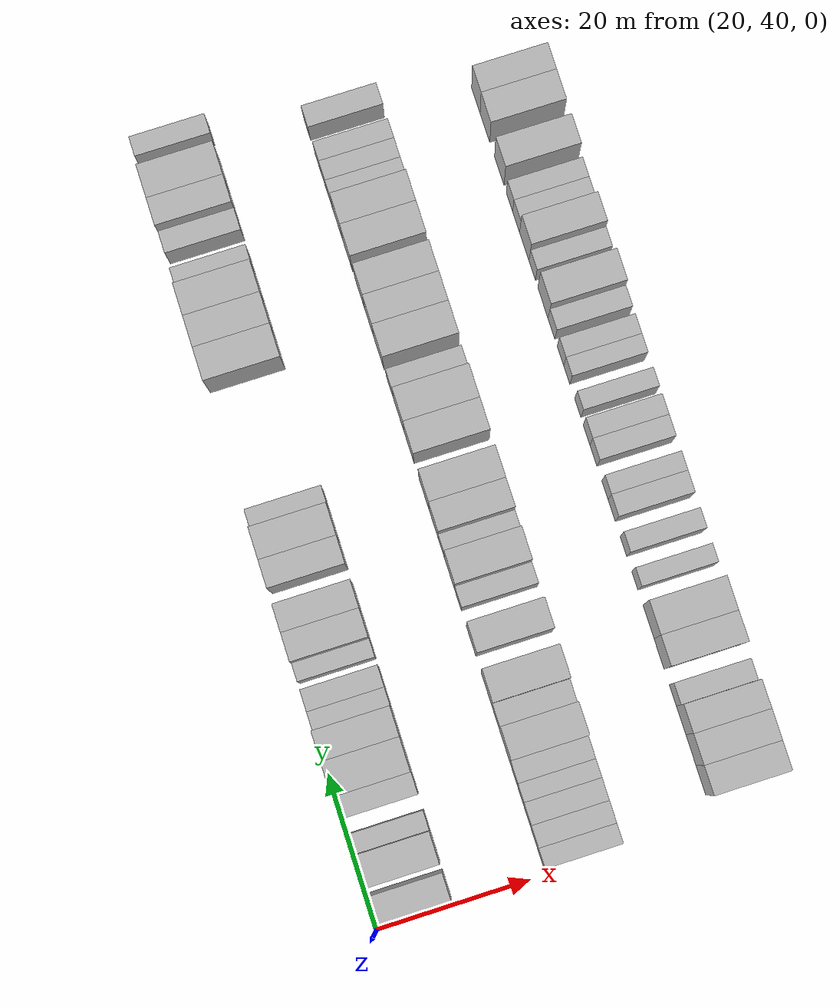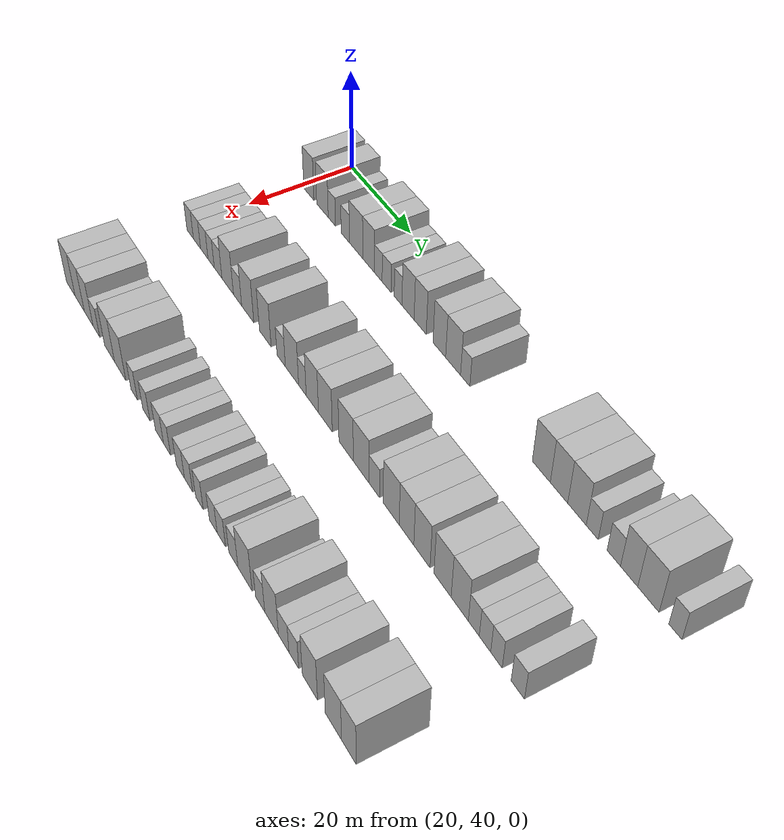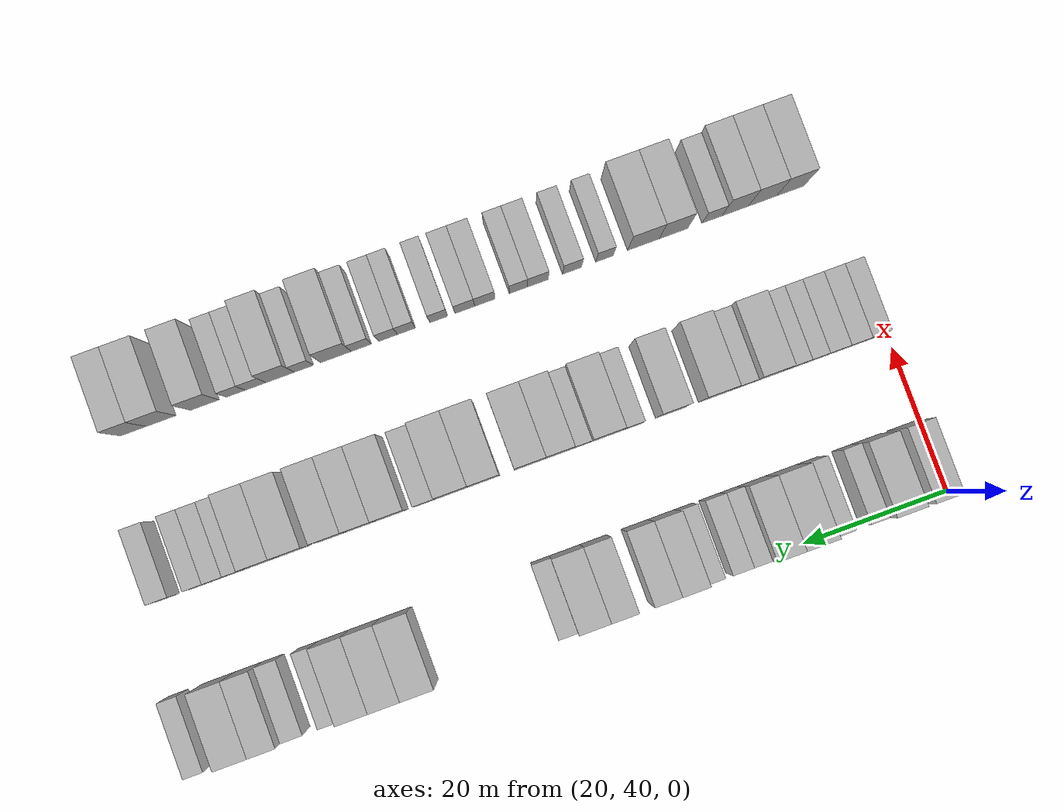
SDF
<sdf version="1.6">
 <world name="default">
  <model name="building_58">
   <static>1</static>
   <pose>25.0000 42.7205 0 0.000000 0.000000 0.000000</pose>
   <link name="link">
    <pose>0 0 4.50 0 0 0</pose>
    <collision name="collision"><geometry><box><size>10.0000 3.7270 9.0000</size></box></geometry></collision>
    <visual name="visual">
     <cast_shadows>0</cast_shadows>
     <geometry><box><size>10.0000 3.7270 9.0000</size></box></geometry>
     <material>
      <script>
       <uri>model://HANNAS_wall/materials/scripts</uri>
       <uri>model://HANNAS_wall/materials/textures</uri>
       <name>vrc/HANNAS_wall</name>
      </script>
     </material>
    </visual>
   </link>
  </model>
  <model name="building_59">
   <static>1</static>
   <pose>25.0000 47.6610 0 0.000000 0.000000 0.000000</pose>
   <link name="link">
    <pose>0 0 4.50 0 0 0</pose>
    <collision name="collision"><geometry><box><size>10.0000 4.1540 9.0000</size></box></geometry></collision>
    <visual name="visual">
     <cast_shadows>0</cast_shadows>
     <geometry><box><size>10.0000 4.1540 9.0000</size></box></geometry>
     <material>
      <script>
       <uri>model://HANNAS_wall/materials/scripts</uri>
       <uri>model://HANNAS_wall/materials/textures</uri>
       <name>vrc/HANNAS_wall</name>
      </script>
     </material>
    </visual>
   </link>
  </model>
  <model name="building_60">
   <static>1</static>
   <pose>25.0000 51.0080 0 0.000000 0.000000 0.000000</pose>
   <link name="link">
    <pose>0 0 3.00 0 0 0</pose>
    <collision name="collision"><geometry><box><size>10.0000 2.5399 6.0000</size></box></geometry></collision>
    <visual name="visual">
     <cast_shadows>0</cast_shadows>
     <geometry><box><size>10.0000 2.5399 6.0000</size></box></geometry>
     <material>
      <script>
       <uri>model://HANNAS_wall/materials/scripts</uri>
       <uri>model://HANNAS_wall/materials/textures</uri>
       <name>vrc/HANNAS_wall</name>
      </script>
     </material>
    </visual>
   </link>
  </model>
  <model name="building_61">
   <static>1</static>
   <pose>25.0000 55.7048 0 0.000000 0.000000 0.000000</pose>
   <link name="link">
    <pose>0 0 3.00 0 0 0</pose>
    <collision name="collision"><geometry><box><size>10.0000 2.8538 6.0000</size></box></geometry></collision>
    <visual name="visual">
     <cast_shadows>0</cast_shadows>
     <geometry><box><size>10.0000 2.8538 6.0000</size></box></geometry>
     <material>
      <script>
       <uri>model://HANNAS_wall/materials/scripts</uri>
       <uri>model://HANNAS_wall/materials/textures</uri>
       <name>vrc/HANNAS_wall</name>
      </script>
     </material>
    </visual>
   </link>
  </model>
  <model name="building_62">
   <static>1</static>
   <pose>25.0000 59.3693 0 0.000000 0.000000 0.000000</pose>
   <link name="link">
    <pose>0 0 4.50 0 0 0</pose>
    <collision name="collision"><geometry><box><size>10.0000 4.4754 9.0000</size></box></geometry></collision>
    <visual name="visual">
     <cast_shadows>0</cast_shadows>
     <geometry><box><size>10.0000 4.4754 9.0000</size></box></geometry>
     <material>
      <script>
       <uri>model://HANNAS_wall/materials/scripts</uri>
       <uri>model://HANNAS_wall/materials/textures</uri>
       <name>vrc/HANNAS_wall</name>
      </script>
     </material>
    </visual>
   </link>
  </model>
  <model name="building_63">
   <static>1</static>
   <pose>25.0000 63.5598 0 0.000000 0.000000 0.000000</pose>
   <link name="link">
    <pose>0 0 4.50 0 0 0</pose>
    <collision name="collision"><geometry><box><size>10.0000 3.9055 9.0000</size></box></geometry></collision>
    <visual name="visual">
     <cast_shadows>0</cast_shadows>
     <geometry><box><size>10.0000 3.9055 9.0000</size></box></geometry>
     <material>
      <script>
       <uri>model://HANNAS_wall/materials/scripts</uri>
       <uri>model://HANNAS_wall/materials/textures</uri>
       <name>vrc/HANNAS_wall</name>
      </script>
     </material>
    </visual>
   </link>
  </model>
  <model name="building_64">
   <static>1</static>
   <pose>25.0000 66.7357 0 0.000000 0.000000 0.000000</pose>
   <link name="link">
    <pose>0 0 3.00 0 0 0</pose>
    <collision name="collision"><geometry><box><size>10.0000 2.4464 6.0000</size></box></geometry></collision>
    <visual name="visual">
     <cast_shadows>0</cast_shadows>
     <geometry><box><size>10.0000 2.4464 6.0000</size></box></geometry>
     <material>
      <script>
       <uri>model://HANNAS_wall/materials/scripts</uri>
       <uri>model://HANNAS_wall/materials/textures</uri>
       <name>vrc/HANNAS_wall</name>
      </script>
     </material>
    </visual>
   </link>
  </model>
  <model name="building_65">
   <static>1</static>
   <pose>25.0000 69.3851 0 0.000000 0.000000 0.000000</pose>
   <link name="link">
    <pose>0 0 3.00 0 0 0</pose>
    <collision name="collision"><geometry><box><size>10.0000 2.8525 6.0000</size></box></geometry></collision>
    <visual name="visual">
     <cast_shadows>0</cast_shadows>
     <geometry><box><size>10.0000 2.8525 6.0000</size></box></geometry>
     <material>
      <script>
       <uri>model://HANNAS_wall/materials/scripts</uri>
       <uri>model://HANNAS_wall/materials/textures</uri>
       <name>vrc/HANNAS_wall</name>
      </script>
     </material>
    </visual>
   </link>
  </model>
  <model name="building_66">
   <static>1</static>
   <pose>25.0000 73.0138 0 0.000000 0.000000 0.000000</pose>
   <link name="link">
    <pose>0 0 3.00 0 0 0</pose>
    <collision name="collision"><geometry><box><size>10.0000 2.4049 6.0000</size></box></geometry></collision>
    <visual name="visual">
     <cast_shadows>0</cast_shadows>
     <geometry><box><size>10.0000 2.4049 6.0000</size></box></geometry>
     <material>
      <script>
       <uri>model://HANNAS_wall/materials/scripts</uri>
       <uri>model://HANNAS_wall/materials/textures</uri>
       <name>vrc/HANNAS_wall</name>
      </script>
     </material>
    </visual>
   </link>
  </model>
  <model name="building_67">
   <static>1</static>
   <pose>25.0000 76.0908 0 0.000000 0.000000 0.000000</pose>
   <link name="link">
    <pose>0 0 4.50 0 0 0</pose>
    <collision name="collision"><geometry><box><size>10.0000 3.7490 9.0000</size></box></geometry></collision>
    <visual name="visual">
     <cast_shadows>0</cast_shadows>
     <geometry><box><size>10.0000 3.7490 9.0000</size></box></geometry>
     <material>
      <script>
       <uri>model://HANNAS_wall/materials/scripts</uri>
       <uri>model://HANNAS_wall/materials/textures</uri>
       <name>vrc/HANNAS_wall</name>
      </script>
     </material>
    </visual>
   </link>
  </model>
  <model name="building_68">
   <static>1</static>
   <pose>25.0000 79.7961 0 0.000000 0.000000 0.000000</pose>
   <link name="link">
    <pose>0 0 4.50 0 0 0</pose>
    <collision name="collision"><geometry><box><size>10.0000 3.6617 9.0000</size></box></geometry></collision>
    <visual name="visual">
     <cast_shadows>0</cast_shadows>
     <geometry><box><size>10.0000 3.6617 9.0000</size></box></geometry>
     <material>
      <script>
       <uri>model://HANNAS_wall/materials/scripts</uri>
       <uri>model://HANNAS_wall/materials/textures</uri>
       <name>vrc/HANNAS_wall</name>
      </script>
     </material>
    </visual>
   </link>
  </model>
  <model name="building_69">
   <static>1</static>
   <pose>25.0000 85.4641 0 0.000000 0.000000 0.000000</pose>
   <link name="link">
    <pose>0 0 4.50 0 0 0</pose>
    <collision name="collision"><geometry><box><size>10.0000 3.6742 9.0000</size></box></geometry></collision>
    <visual name="visual">
     <cast_shadows>0</cast_shadows>
     <geometry><box><size>10.0000 3.6742 9.0000</size></box></geometry>
     <material>
      <script>
       <uri>model://HANNAS_wall/materials/scripts</uri>
       <uri>model://HANNAS_wall/materials/textures</uri>
       <name>vrc/HANNAS_wall</name>
      </script>
     </material>
    </visual>
   </link>
  </model>
  <model name="building_70">
   <static>1</static>
   <pose>25.0000 89.4235 0 0.000000 0.000000 0.000000</pose>
   <link name="link">
    <pose>0 0 4.50 0 0 0</pose>
    <collision name="collision"><geometry><box><size>10.0000 4.2447 9.0000</size></box></geometry></collision>
    <visual name="visual">
     <cast_shadows>0</cast_shadows>
     <geometry><box><size>10.0000 4.2447 9.0000</size></box></geometry>
     <material>
      <script>
       <uri>model://HANNAS_wall/materials/scripts</uri>
       <uri>model://HANNAS_wall/materials/textures</uri>
       <name>vrc/HANNAS_wall</name>
      </script>
     </material>
    </visual>
   </link>
  </model>
  <model name="building_71">
   <static>1</static>
   <pose>25.0000 92.8496 0 0.000000 0.000000 0.000000</pose>
   <link name="link">
    <pose>0 0 3.00 0 0 0</pose>
    <collision name="collision"><geometry><box><size>10.0000 2.6073 6.0000</size></box></geometry></collision>
    <visual name="visual">
     <cast_shadows>0</cast_shadows>
     <geometry><box><size>10.0000 2.6073 6.0000</size></box></geometry>
     <material>
      <script>
       <uri>model://HANNAS_wall/materials/scripts</uri>
       <uri>model://HANNAS_wall/materials/textures</uri>
       <name>vrc/HANNAS_wall</name>
      </script>
     </material>
    </visual>
   </link>
  </model>
  <model name="building_72">
   <static>1</static>
   <pose>25.0000 112.7935 0 0.000000 0.000000 0.000000</pose>
   <link name="link">
    <pose>0 0 4.50 0 0 0</pose>
    <collision name="collision"><geometry><box><size>10.0000 4.4269 9.0000</size></box></geometry></collision>
    <visual name="visual">
     <cast_shadows>0</cast_shadows>
     <geometry><box><size>10.0000 4.4269 9.0000</size></box></geometry>
     <material>
      <script>
       <uri>model://HANNAS_wall/materials/scripts</uri>
       <uri>model://HANNAS_wall/materials/textures</uri>
       <name>vrc/HANNAS_wall</name>
      </script>
     </material>
    </visual>
   </link>
  </model>
  <model name="building_73">
   <static>1</static>
   <pose>25.0000 117.0970 0 0.000000 0.000000 0.000000</pose>
   <link name="link">
    <pose>0 0 4.50 0 0 0</pose>
    <collision name="collision"><geometry><box><size>10.0000 4.1801 9.0000</size></box></geometry></collision>
    <visual name="visual">
     <cast_shadows>0</cast_shadows>
     <geometry><box><size>10.0000 4.1801 9.0000</size></box></geometry>
     <material>
      <script>
       <uri>model://HANNAS_wall/materials/scripts</uri>
       <uri>model://HANNAS_wall/materials/textures</uri>
       <name>vrc/HANNAS_wall</name>
      </script>
     </material>
    </visual>
   </link>
  </model>
  <model name="building_74">
   <static>1</static>
   <pose>25.0000 121.3496 0 0.000000 0.000000 0.000000</pose>
   <link name="link">
    <pose>0 0 4.50 0 0 0</pose>
    <collision name="collision"><geometry><box><size>10.0000 4.3249 9.0000</size></box></geometry></collision>
    <visual name="visual">
     <cast_shadows>0</cast_shadows>
     <geometry><box><size>10.0000 4.3249 9.0000</size></box></geometry>
     <material>
      <script>
       <uri>model://HANNAS_wall/materials/scripts</uri>
       <uri>model://HANNAS_wall/materials/textures</uri>
       <name>vrc/HANNAS_wall</name>
      </script>
     </material>
    </visual>
   </link>
  </model>
  <model name="building_75">
   <static>1</static>
   <pose>25.0000 124.8688 0 0.000000 0.000000 0.000000</pose>
   <link name="link">
    <pose>0 0 3.00 0 0 0</pose>
    <collision name="collision"><geometry><box><size>10.0000 2.7135 6.0000</size></box></geometry></collision>
    <visual name="visual">
     <cast_shadows>0</cast_shadows>
     <geometry><box><size>10.0000 2.7135 6.0000</size></box></geometry>
     <material>
      <script>
       <uri>model://HANNAS_wall/materials/scripts</uri>
       <uri>model://HANNAS_wall/materials/textures</uri>
       <name>vrc/HANNAS_wall</name>
      </script>
     </material>
    </visual>
   </link>
  </model>
  <model name="building_76">
   <static>1</static>
   <pose>25.0000 129.7061 0 0.000000 0.000000 0.000000</pose>
   <link name="link">
    <pose>0 0 3.00 0 0 0</pose>
    <collision name="collision"><geometry><box><size>10.0000 2.9611 6.0000</size></box></geometry></collision>
    <visual name="visual">
     <cast_shadows>0</cast_shadows>
     <geometry><box><size>10.0000 2.9611 6.0000</size></box></geometry>
     <material>
      <script>
       <uri>model://HANNAS_wall/materials/scripts</uri>
       <uri>model://HANNAS_wall/materials/textures</uri>
       <name>vrc/HANNAS_wall</name>
      </script>
     </material>
    </visual>
   </link>
  </model>
  <model name="building_77">
   <static>1</static>
   <pose>25.0000 133.0386 0 0.000000 0.000000 0.000000</pose>
   <link name="link">
    <pose>0 0 4.50 0 0 0</pose>
    <collision name="collision"><geometry><box><size>10.0000 3.7039 9.0000</size></box></geometry></collision>
    <visual name="visual">
     <cast_shadows>0</cast_shadows>
     <geometry><box><size>10.0000 3.7039 9.0000</size></box></geometry>
     <material>
      <script>
       <uri>model://HANNAS_wall/materials/scripts</uri>
       <uri>model://HANNAS_wall/materials/textures</uri>
       <name>vrc/HANNAS_wall</name>
      </script>
     </material>
    </visual>
   </link>
  </model>
  <model name="building_78">
   <static>1</static>
   <pose>25.0000 137.1383 0 0.000000 0.000000 0.000000</pose>
   <link name="link">
    <pose>0 0 4.50 0 0 0</pose>
    <collision name="collision"><geometry><box><size>10.0000 4.4954 9.0000</size></box></geometry></collision>
    <visual name="visual">
     <cast_shadows>0</cast_shadows>
     <geometry><box><size>10.0000 4.4954 9.0000</size></box></geometry>
     <material>
      <script>
       <uri>model://HANNAS_wall/materials/scripts</uri>
       <uri>model://HANNAS_wall/materials/textures</uri>
       <name>vrc/HANNAS_wall</name>
      </script>
     </material>
    </visual>
   </link>
  </model>
  <model name="building_79">
   <static>1</static>
   <pose>25.0000 142.7138 0 0.000000 0.000000 0.000000</pose>
   <link name="link">
    <pose>0 0 3.00 0 0 0</pose>
    <collision name="collision"><geometry><box><size>10.0000 2.6556 6.0000</size></box></geometry></collision>
    <visual name="visual">
     <cast_shadows>0</cast_shadows>
     <geometry><box><size>10.0000 2.6556 6.0000</size></box></geometry>
     <material>
      <script>
       <uri>model://HANNAS_wall/materials/scripts</uri>
       <uri>model://HANNAS_wall/materials/textures</uri>
       <name>vrc/HANNAS_wall</name>
      </script>
     </material>
    </visual>
   </link>
  </model>
  <model name="building_186">
   <static>1</static>
   <pose>47.0000 42.3346 0 0.000000 0.000000 0.000000</pose>
   <link name="link">
    <pose>0 0 3.00 0 0 0</pose>
    <collision name="collision"><geometry><box><size>10.0000 2.6001 6.0000</size></box></geometry></collision>
    <visual name="visual">
     <cast_shadows>0</cast_shadows>
     <geometry><box><size>10.0000 2.6001 6.0000</size></box></geometry>
     <material>
      <script>
       <uri>model://HANNAS_wall/materials/scripts</uri>
       <uri>model://HANNAS_wall/materials/textures</uri>
       <name>vrc/HANNAS_wall</name>
      </script>
     </material>
    </visual>
   </link>
  </model>
  <model name="building_187">
   <static>1</static>
   <pose>47.0000 45.0636 0 0.000000 0.000000 0.000000</pose>
   <link name="link">
    <pose>0 0 3.00 0 0 0</pose>
    <collision name="collision"><geometry><box><size>10.0000 2.8581 6.0000</size></box></geometry></collision>
    <visual name="visual">
     <cast_shadows>0</cast_shadows>
     <geometry><box><size>10.0000 2.8581 6.0000</size></box></geometry>
     <material>
      <script>
       <uri>model://HANNAS_wall/materials/scripts</uri>
       <uri>model://HANNAS_wall/materials/textures</uri>
       <name>vrc/HANNAS_wall</name>
      </script>
     </material>
    </visual>
   </link>
  </model>
  <model name="building_188">
   <static>1</static>
   <pose>47.0000 47.9444 0 0.000000 0.000000 0.000000</pose>
   <link name="link">
    <pose>0 0 3.00 0 0 0</pose>
    <collision name="collision"><geometry><box><size>10.0000 2.9035 6.0000</size></box></geometry></collision>
    <visual name="visual">
     <cast_shadows>0</cast_shadows>
     <geometry><box><size>10.0000 2.9035 6.0000</size></box></geometry>
     <material>
      <script>
       <uri>model://HANNAS_wall/materials/scripts</uri>
       <uri>model://HANNAS_wall/materials/textures</uri>
       <name>vrc/HANNAS_wall</name>
      </script>
     </material>
    </visual>
   </link>
  </model>
  <model name="building_189">
   <static>1</static>
   <pose>47.0000 50.5984 0 0.000000 0.000000 0.000000</pose>
   <link name="link">
    <pose>0 0 3.00 0 0 0</pose>
    <collision name="collision"><geometry><box><size>10.0000 2.4044 6.0000</size></box></geometry></collision>
    <visual name="visual">
     <cast_shadows>0</cast_shadows>
     <geometry><box><size>10.0000 2.4044 6.0000</size></box></geometry>
     <material>
      <script>
       <uri>model://HANNAS_wall/materials/scripts</uri>
       <uri>model://HANNAS_wall/materials/textures</uri>
       <name>vrc/HANNAS_wall</name>
      </script>
     </material>
    </visual>
   </link>
  </model>
  <model name="building_190">
   <static>1</static>
   <pose>47.0000 53.2652 0 0.000000 0.000000 0.000000</pose>
   <link name="link">
    <pose>0 0 3.00 0 0 0</pose>
    <collision name="collision"><geometry><box><size>10.0000 2.9292 6.0000</size></box></geometry></collision>
    <visual name="visual">
     <cast_shadows>0</cast_shadows>
     <geometry><box><size>10.0000 2.9292 6.0000</size></box></geometry>
     <material>
      <script>
       <uri>model://HANNAS_wall/materials/scripts</uri>
       <uri>model://HANNAS_wall/materials/textures</uri>
       <name>vrc/HANNAS_wall</name>
      </script>
     </material>
    </visual>
   </link>
  </model>
  <model name="building_191">
   <static>1</static>
   <pose>47.0000 56.8713 0 0.000000 0.000000 0.000000</pose>
   <link name="link">
    <pose>0 0 4.50 0 0 0</pose>
    <collision name="collision"><geometry><box><size>10.0000 4.2830 9.0000</size></box></geometry></collision>
    <visual name="visual">
     <cast_shadows>0</cast_shadows>
     <geometry><box><size>10.0000 4.2830 9.0000</size></box></geometry>
     <material>
      <script>
       <uri>model://HANNAS_wall/materials/scripts</uri>
       <uri>model://HANNAS_wall/materials/textures</uri>
       <name>vrc/HANNAS_wall</name>
      </script>
     </material>
    </visual>
   </link>
  </model>
  <model name="building_192">
   <static>1</static>
   <pose>47.0000 60.5067 0 0.000000 0.000000 0.000000</pose>
   <link name="link">
    <pose>0 0 3.00 0 0 0</pose>
    <collision name="collision"><geometry><box><size>10.0000 2.9879 6.0000</size></box></geometry></collision>
    <visual name="visual">
     <cast_shadows>0</cast_shadows>
     <geometry><box><size>10.0000 2.9879 6.0000</size></box></geometry>
     <material>
      <script>
       <uri>model://HANNAS_wall/materials/scripts</uri>
       <uri>model://HANNAS_wall/materials/textures</uri>
       <name>vrc/HANNAS_wall</name>
      </script>
     </material>
    </visual>
   </link>
  </model>
  <model name="building_193">
   <static>1</static>
   <pose>47.0000 64.1686 0 0.000000 0.000000 0.000000</pose>
   <link name="link">
    <pose>0 0 4.50 0 0 0</pose>
    <collision name="collision"><geometry><box><size>10.0000 4.3358 9.0000</size></box></geometry></collision>
    <visual name="visual">
     <cast_shadows>0</cast_shadows>
     <geometry><box><size>10.0000 4.3358 9.0000</size></box></geometry>
     <material>
      <script>
       <uri>model://HANNAS_wall/materials/scripts</uri>
       <uri>model://HANNAS_wall/materials/textures</uri>
       <name>vrc/HANNAS_wall</name>
      </script>
     </material>
    </visual>
   </link>
  </model>
  <model name="building_194">
   <static>1</static>
   <pose>47.0000 70.3367 0 0.000000 0.000000 0.000000</pose>
   <link name="link">
    <pose>0 0 4.50 0 0 0</pose>
    <collision name="collision"><geometry><box><size>10.0000 4.0005 9.0000</size></box></geometry></collision>
    <visual name="visual">
     <cast_shadows>0</cast_shadows>
     <geometry><box><size>10.0000 4.0005 9.0000</size></box></geometry>
     <material>
      <script>
       <uri>model://HANNAS_wall/materials/scripts</uri>
       <uri>model://HANNAS_wall/materials/textures</uri>
       <name>vrc/HANNAS_wall</name>
      </script>
     </material>
    </visual>
   </link>
  </model>
  <model name="building_195">
   <static>1</static>
   <pose>47.0000 75.7270 0 0.000000 0.000000 0.000000</pose>
   <link name="link">
    <pose>0 0 3.00 0 0 0</pose>
    <collision name="collision"><geometry><box><size>10.0000 2.7800 6.0000</size></box></geometry></collision>
    <visual name="visual">
     <cast_shadows>0</cast_shadows>
     <geometry><box><size>10.0000 2.7800 6.0000</size></box></geometry>
     <material>
      <script>
       <uri>model://HANNAS_wall/materials/scripts</uri>
       <uri>model://HANNAS_wall/materials/textures</uri>
       <name>vrc/HANNAS_wall</name>
      </script>
     </material>
    </visual>
   </link>
  </model>
  <model name="building_196">
   <static>1</static>
   <pose>47.0000 79.2919 0 0.000000 0.000000 0.000000</pose>
   <link name="link">
    <pose>0 0 4.50 0 0 0</pose>
    <collision name="collision"><geometry><box><size>10.0000 4.3498 9.0000</size></box></geometry></collision>
    <visual name="visual">
     <cast_shadows>0</cast_shadows>
     <geometry><box><size>10.0000 4.3498 9.0000</size></box></geometry>
     <material>
      <script>
       <uri>model://HANNAS_wall/materials/scripts</uri>
       <uri>model://HANNAS_wall/materials/textures</uri>
       <name>vrc/HANNAS_wall</name>
      </script>
     </material>
    </visual>
   </link>
  </model>
  <model name="building_197">
   <static>1</static>
   <pose>47.0000 82.6825 0 0.000000 0.000000 0.000000</pose>
   <link name="link">
    <pose>0 0 3.00 0 0 0</pose>
    <collision name="collision"><geometry><box><size>10.0000 2.4313 6.0000</size></box></geometry></collision>
    <visual name="visual">
     <cast_shadows>0</cast_shadows>
     <geometry><box><size>10.0000 2.4313 6.0000</size></box></geometry>
     <material>
      <script>
       <uri>model://HANNAS_wall/materials/scripts</uri>
       <uri>model://HANNAS_wall/materials/textures</uri>
       <name>vrc/HANNAS_wall</name>
      </script>
     </material>
    </visual>
   </link>
  </model>
  <model name="building_198">
   <static>1</static>
   <pose>47.0000 85.8250 0 0.000000 0.000000 0.000000</pose>
   <link name="link">
    <pose>0 0 4.50 0 0 0</pose>
    <collision name="collision"><geometry><box><size>10.0000 3.8539 9.0000</size></box></geometry></collision>
    <visual name="visual">
     <cast_shadows>0</cast_shadows>
     <geometry><box><size>10.0000 3.8539 9.0000</size></box></geometry>
     <material>
      <script>
       <uri>model://HANNAS_wall/materials/scripts</uri>
       <uri>model://HANNAS_wall/materials/textures</uri>
       <name>vrc/HANNAS_wall</name>
      </script>
     </material>
    </visual>
   </link>
  </model>
  <model name="building_199">
   <static>1</static>
   <pose>47.0000 89.8722 0 0.000000 0.000000 0.000000</pose>
   <link name="link">
    <pose>0 0 4.50 0 0 0</pose>
    <collision name="collision"><geometry><box><size>10.0000 4.2404 9.0000</size></box></geometry></collision>
    <visual name="visual">
     <cast_shadows>0</cast_shadows>
     <geometry><box><size>10.0000 4.2404 9.0000</size></box></geometry>
     <material>
      <script>
       <uri>model://HANNAS_wall/materials/scripts</uri>
       <uri>model://HANNAS_wall/materials/textures</uri>
       <name>vrc/HANNAS_wall</name>
      </script>
     </material>
    </visual>
   </link>
  </model>
  <model name="building_200">
   <static>1</static>
   <pose>47.0000 96.1165 0 0.000000 0.000000 0.000000</pose>
   <link name="link">
    <pose>0 0 4.50 0 0 0</pose>
    <collision name="collision"><geometry><box><size>10.0000 4.2482 9.0000</size></box></geometry></collision>
    <visual name="visual">
     <cast_shadows>0</cast_shadows>
     <geometry><box><size>10.0000 4.2482 9.0000</size></box></geometry>
     <material>
      <script>
       <uri>model://HANNAS_wall/materials/scripts</uri>
       <uri>model://HANNAS_wall/materials/textures</uri>
       <name>vrc/HANNAS_wall</name>
      </script>
     </material>
    </visual>
   </link>
  </model>
  <model name="building_201">
   <static>1</static>
   <pose>47.0000 100.4688 0 0.000000 0.000000 0.000000</pose>
   <link name="link">
    <pose>0 0 4.50 0 0 0</pose>
    <collision name="collision"><geometry><box><size>10.0000 4.4564 9.0000</size></box></geometry></collision>
    <visual name="visual">
     <cast_shadows>0</cast_shadows>
     <geometry><box><size>10.0000 4.4564 9.0000</size></box></geometry>
     <material>
      <script>
       <uri>model://HANNAS_wall/materials/scripts</uri>
       <uri>model://HANNAS_wall/materials/textures</uri>
       <name>vrc/HANNAS_wall</name>
      </script>
     </material>
    </visual>
   </link>
  </model>
  <model name="building_202">
   <static>1</static>
   <pose>47.0000 104.1846 0 0.000000 0.000000 0.000000</pose>
   <link name="link">
    <pose>0 0 3.00 0 0 0</pose>
    <collision name="collision"><geometry><box><size>10.0000 2.9751 6.0000</size></box></geometry></collision>
    <visual name="visual">
     <cast_shadows>0</cast_shadows>
     <geometry><box><size>10.0000 2.9751 6.0000</size></box></geometry>
     <material>
      <script>
       <uri>model://HANNAS_wall/materials/scripts</uri>
       <uri>model://HANNAS_wall/materials/textures</uri>
       <name>vrc/HANNAS_wall</name>
      </script>
     </material>
    </visual>
   </link>
  </model>
  <model name="building_203">
   <static>1</static>
   <pose>47.0000 108.8493 0 0.000000 0.000000 0.000000</pose>
   <link name="link">
    <pose>0 0 4.50 0 0 0</pose>
    <collision name="collision"><geometry><box><size>10.0000 4.3542 9.0000</size></box></geometry></collision>
    <visual name="visual">
     <cast_shadows>0</cast_shadows>
     <geometry><box><size>10.0000 4.3542 9.0000</size></box></geometry>
     <material>
      <script>
       <uri>model://HANNAS_wall/materials/scripts</uri>
       <uri>model://HANNAS_wall/materials/textures</uri>
       <name>vrc/HANNAS_wall</name>
      </script>
     </material>
    </visual>
   </link>
  </model>
  <model name="building_204">
   <static>1</static>
   <pose>47.0000 112.9683 0 0.000000 0.000000 0.000000</pose>
   <link name="link">
    <pose>0 0 4.50 0 0 0</pose>
    <collision name="collision"><geometry><box><size>10.0000 3.8839 9.0000</size></box></geometry></collision>
    <visual name="visual">
     <cast_shadows>0</cast_shadows>
     <geometry><box><size>10.0000 3.8839 9.0000</size></box></geometry>
     <material>
      <script>
       <uri>model://HANNAS_wall/materials/scripts</uri>
       <uri>model://HANNAS_wall/materials/textures</uri>
       <name>vrc/HANNAS_wall</name>
      </script>
     </material>
    </visual>
   </link>
  </model>
  <model name="building_205">
   <static>1</static>
   <pose>47.0000 116.9924 0 0.000000 0.000000 0.000000</pose>
   <link name="link">
    <pose>0 0 4.50 0 0 0</pose>
    <collision name="collision"><geometry><box><size>10.0000 4.1643 9.0000</size></box></geometry></collision>
    <visual name="visual">
     <cast_shadows>0</cast_shadows>
     <geometry><box><size>10.0000 4.1643 9.0000</size></box></geometry>
     <material>
      <script>
       <uri>model://HANNAS_wall/materials/scripts</uri>
       <uri>model://HANNAS_wall/materials/textures</uri>
       <name>vrc/HANNAS_wall</name>
      </script>
     </material>
    </visual>
   </link>
  </model>
  <model name="building_206">
   <static>1</static>
   <pose>47.0000 122.2090 0 0.000000 0.000000 0.000000</pose>
   <link name="link">
    <pose>0 0 4.50 0 0 0</pose>
    <collision name="collision"><geometry><box><size>10.0000 4.2689 9.0000</size></box></geometry></collision>
    <visual name="visual">
     <cast_shadows>0</cast_shadows>
     <geometry><box><size>10.0000 4.2689 9.0000</size></box></geometry>
     <material>
      <script>
       <uri>model://HANNAS_wall/materials/scripts</uri>
       <uri>model://HANNAS_wall/materials/textures</uri>
       <name>vrc/HANNAS_wall</name>
      </script>
     </material>
    </visual>
   </link>
  </model>
  <model name="building_207">
   <static>1</static>
   <pose>47.0000 126.4212 0 0.000000 0.000000 0.000000</pose>
   <link name="link">
    <pose>0 0 4.50 0 0 0</pose>
    <collision name="collision"><geometry><box><size>10.0000 4.1556 9.0000</size></box></geometry></collision>
    <visual name="visual">
     <cast_shadows>0</cast_shadows>
     <geometry><box><size>10.0000 4.1556 9.0000</size></box></geometry>
     <material>
      <script>
       <uri>model://HANNAS_wall/materials/scripts</uri>
       <uri>model://HANNAS_wall/materials/textures</uri>
       <name>vrc/HANNAS_wall</name>
      </script>
     </material>
    </visual>
   </link>
  </model>
  <model name="building_208">
   <static>1</static>
   <pose>47.0000 129.7878 0 0.000000 0.000000 0.000000</pose>
   <link name="link">
    <pose>0 0 3.00 0 0 0</pose>
    <collision name="collision"><geometry><box><size>10.0000 2.5776 6.0000</size></box></geometry></collision>
    <visual name="visual">
     <cast_shadows>0</cast_shadows>
     <geometry><box><size>10.0000 2.5776 6.0000</size></box></geometry>
     <material>
      <script>
       <uri>model://HANNAS_wall/materials/scripts</uri>
       <uri>model://HANNAS_wall/materials/textures</uri>
       <name>vrc/HANNAS_wall</name>
      </script>
     </material>
    </visual>
   </link>
  </model>
  <model name="building_209">
   <static>1</static>
   <pose>47.0000 132.4002 0 0.000000 0.000000 0.000000</pose>
   <link name="link">
    <pose>0 0 3.00 0 0 0</pose>
    <collision name="collision"><geometry><box><size>10.0000 2.6472 6.0000</size></box></geometry></collision>
    <visual name="visual">
     <cast_shadows>0</cast_shadows>
     <geometry><box><size>10.0000 2.6472 6.0000</size></box></geometry>
     <material>
      <script>
       <uri>model://HANNAS_wall/materials/scripts</uri>
       <uri>model://HANNAS_wall/materials/textures</uri>
       <name>vrc/HANNAS_wall</name>
      </script>
     </material>
    </visual>
   </link>
  </model>
  <model name="building_210">
   <static>1</static>
   <pose>47.0000 135.0290 0 0.000000 0.000000 0.000000</pose>
   <link name="link">
    <pose>0 0 3.00 0 0 0</pose>
    <collision name="collision"><geometry><box><size>10.0000 2.6105 6.0000</size></box></geometry></collision>
    <visual name="visual">
     <cast_shadows>0</cast_shadows>
     <geometry><box><size>10.0000 2.6105 6.0000</size></box></geometry>
     <material>
      <script>
       <uri>model://HANNAS_wall/materials/scripts</uri>
       <uri>model://HANNAS_wall/materials/textures</uri>
       <name>vrc/HANNAS_wall</name>
      </script>
     </material>
    </visual>
   </link>
  </model>
  <model name="building_211">
   <static>1</static>
   <pose>47.0000 139.7994 0 0.000000 0.000000 0.000000</pose>
   <link name="link">
    <pose>0 0 3.00 0 0 0</pose>
    <collision name="collision"><geometry><box><size>10.0000 2.9303 6.0000</size></box></geometry></collision>
    <visual name="visual">
     <cast_shadows>0</cast_shadows>
     <geometry><box><size>10.0000 2.9303 6.0000</size></box></geometry>
     <material>
      <script>
       <uri>model://HANNAS_wall/materials/scripts</uri>
       <uri>model://HANNAS_wall/materials/textures</uri>
       <name>vrc/HANNAS_wall</name>
      </script>
     </material>
    </visual>
   </link>
  </model>
  <model name="building_313">
   <static>1</static>
   <pose>69.0000 45.1753 0 0.000000 0.000000 0.000000</pose>
   <link name="link">
    <pose>0 0 4.50 0 0 0</pose>
    <collision name="collision"><geometry><box><size>10.0000 3.8233 9.0000</size></box></geometry></collision>
    <visual name="visual">
     <cast_shadows>0</cast_shadows>
     <geometry><box><size>10.0000 3.8233 9.0000</size></box></geometry>
     <material>
      <script>
       <uri>model://HANNAS_wall/materials/scripts</uri>
       <uri>model://HANNAS_wall/materials/textures</uri>
       <name>vrc/HANNAS_wall</name>
      </script>
     </material>
    </visual>
   </link>
  </model>
  <model name="building_314">
   <static>1</static>
   <pose>69.0000 49.0927 0 0.000000 0.000000 0.000000</pose>
   <link name="link">
    <pose>0 0 4.50 0 0 0</pose>
    <collision name="collision"><geometry><box><size>10.0000 4.0115 9.0000</size></box></geometry></collision>
    <visual name="visual">
     <cast_shadows>0</cast_shadows>
     <geometry><box><size>10.0000 4.0115 9.0000</size></box></geometry>
     <material>
      <script>
       <uri>model://HANNAS_wall/materials/scripts</uri>
       <uri>model://HANNAS_wall/materials/textures</uri>
       <name>vrc/HANNAS_wall</name>
      </script>
     </material>
    </visual>
   </link>
  </model>
  <model name="building_315">
   <static>1</static>
   <pose>69.0000 52.9551 0 0.000000 0.000000 0.000000</pose>
   <link name="link">
    <pose>0 0 4.50 0 0 0</pose>
    <collision name="collision"><geometry><box><size>10.0000 3.7131 9.0000</size></box></geometry></collision>
    <visual name="visual">
     <cast_shadows>0</cast_shadows>
     <geometry><box><size>10.0000 3.7131 9.0000</size></box></geometry>
     <material>
      <script>
       <uri>model://HANNAS_wall/materials/scripts</uri>
       <uri>model://HANNAS_wall/materials/textures</uri>
       <name>vrc/HANNAS_wall</name>
      </script>
     </material>
    </visual>
   </link>
  </model>
  <model name="building_316">
   <static>1</static>
   <pose>69.0000 56.2099 0 0.000000 0.000000 0.000000</pose>
   <link name="link">
    <pose>0 0 3.00 0 0 0</pose>
    <collision name="collision"><geometry><box><size>10.0000 2.7965 6.0000</size></box></geometry></collision>
    <visual name="visual">
     <cast_shadows>0</cast_shadows>
     <geometry><box><size>10.0000 2.7965 6.0000</size></box></geometry>
     <material>
      <script>
       <uri>model://HANNAS_wall/materials/scripts</uri>
       <uri>model://HANNAS_wall/materials/textures</uri>
       <name>vrc/HANNAS_wall</name>
      </script>
     </material>
    </visual>
   </link>
  </model>
  <model name="building_317">
   <static>1</static>
   <pose>69.0000 61.6062 0 0.000000 0.000000 0.000000</pose>
   <link name="link">
    <pose>0 0 4.50 0 0 0</pose>
    <collision name="collision"><geometry><box><size>10.0000 3.9961 9.0000</size></box></geometry></collision>
    <visual name="visual">
     <cast_shadows>0</cast_shadows>
     <geometry><box><size>10.0000 3.9961 9.0000</size></box></geometry>
     <material>
      <script>
       <uri>model://HANNAS_wall/materials/scripts</uri>
       <uri>model://HANNAS_wall/materials/textures</uri>
       <name>vrc/HANNAS_wall</name>
      </script>
     </material>
    </visual>
   </link>
  </model>
  <model name="building_318">
   <static>1</static>
   <pose>69.0000 65.8318 0 0.000000 0.000000 0.000000</pose>
   <link name="link">
    <pose>0 0 4.50 0 0 0</pose>
    <collision name="collision"><geometry><box><size>10.0000 4.4550 9.0000</size></box></geometry></collision>
    <visual name="visual">
     <cast_shadows>0</cast_shadows>
     <geometry><box><size>10.0000 4.4550 9.0000</size></box></geometry>
     <material>
      <script>
       <uri>model://HANNAS_wall/materials/scripts</uri>
       <uri>model://HANNAS_wall/materials/textures</uri>
       <name>vrc/HANNAS_wall</name>
      </script>
     </material>
    </visual>
   </link>
  </model>
  <model name="building_319">
   <static>1</static>
   <pose>69.0000 71.2851 0 0.000000 0.000000 0.000000</pose>
   <link name="link">
    <pose>0 0 3.00 0 0 0</pose>
    <collision name="collision"><geometry><box><size>10.0000 2.4518 6.0000</size></box></geometry></collision>
    <visual name="visual">
     <cast_shadows>0</cast_shadows>
     <geometry><box><size>10.0000 2.4518 6.0000</size></box></geometry>
     <material>
      <script>
       <uri>model://HANNAS_wall/materials/scripts</uri>
       <uri>model://HANNAS_wall/materials/textures</uri>
       <name>vrc/HANNAS_wall</name>
      </script>
     </material>
    </visual>
   </link>
  </model>
  <model name="building_320">
   <static>1</static>
   <pose>69.0000 75.8413 0 0.000000 0.000000 0.000000</pose>
   <link name="link">
    <pose>0 0 3.00 0 0 0</pose>
    <collision name="collision"><geometry><box><size>10.0000 2.6605 6.0000</size></box></geometry></collision>
    <visual name="visual">
     <cast_shadows>0</cast_shadows>
     <geometry><box><size>10.0000 2.6605 6.0000</size></box></geometry>
     <material>
      <script>
       <uri>model://HANNAS_wall/materials/scripts</uri>
       <uri>model://HANNAS_wall/materials/textures</uri>
       <name>vrc/HANNAS_wall</name>
      </script>
     </material>
    </visual>
   </link>
  </model>
  <model name="building_321">
   <static>1</static>
   <pose>69.0000 80.6207 0 0.000000 0.000000 0.000000</pose>
   <link name="link">
    <pose>0 0 3.00 0 0 0</pose>
    <collision name="collision"><geometry><box><size>10.0000 2.8983 6.0000</size></box></geometry></collision>
    <visual name="visual">
     <cast_shadows>0</cast_shadows>
     <geometry><box><size>10.0000 2.8983 6.0000</size></box></geometry>
     <material>
      <script>
       <uri>model://HANNAS_wall/materials/scripts</uri>
       <uri>model://HANNAS_wall/materials/textures</uri>
       <name>vrc/HANNAS_wall</name>
      </script>
     </material>
    </visual>
   </link>
  </model>
  <model name="building_322">
   <static>1</static>
   <pose>69.0000 83.3358 0 0.000000 0.000000 0.000000</pose>
   <link name="link">
    <pose>0 0 3.00 0 0 0</pose>
    <collision name="collision"><geometry><box><size>10.0000 2.5320 6.0000</size></box></geometry></collision>
    <visual name="visual">
     <cast_shadows>0</cast_shadows>
     <geometry><box><size>10.0000 2.5320 6.0000</size></box></geometry>
     <material>
      <script>
       <uri>model://HANNAS_wall/materials/scripts</uri>
       <uri>model://HANNAS_wall/materials/textures</uri>
       <name>vrc/HANNAS_wall</name>
      </script>
     </material>
    </visual>
   </link>
  </model>
  <model name="building_323">
   <static>1</static>
   <pose>69.0000 88.0215 0 0.000000 0.000000 0.000000</pose>
   <link name="link">
    <pose>0 0 3.00 0 0 0</pose>
    <collision name="collision"><geometry><box><size>10.0000 2.8394 6.0000</size></box></geometry></collision>
    <visual name="visual">
     <cast_shadows>0</cast_shadows>
     <geometry><box><size>10.0000 2.8394 6.0000</size></box></geometry>
     <material>
      <script>
       <uri>model://HANNAS_wall/materials/scripts</uri>
       <uri>model://HANNAS_wall/materials/textures</uri>
       <name>vrc/HANNAS_wall</name>
      </script>
     </material>
    </visual>
   </link>
  </model>
  <model name="building_324">
   <static>1</static>
   <pose>69.0000 90.8163 0 0.000000 0.000000 0.000000</pose>
   <link name="link">
    <pose>0 0 3.00 0 0 0</pose>
    <collision name="collision"><geometry><box><size>10.0000 2.7501 6.0000</size></box></geometry></collision>
    <visual name="visual">
     <cast_shadows>0</cast_shadows>
     <geometry><box><size>10.0000 2.7501 6.0000</size></box></geometry>
     <material>
      <script>
       <uri>model://HANNAS_wall/materials/scripts</uri>
       <uri>model://HANNAS_wall/materials/textures</uri>
       <name>vrc/HANNAS_wall</name>
      </script>
     </material>
    </visual>
   </link>
  </model>
  <model name="building_325">
   <static>1</static>
   <pose>69.0000 94.4416 0 0.000000 0.000000 0.000000</pose>
   <link name="link">
    <pose>0 0 3.00 0 0 0</pose>
    <collision name="collision"><geometry><box><size>10.0000 2.5005 6.0000</size></box></geometry></collision>
    <visual name="visual">
     <cast_shadows>0</cast_shadows>
     <geometry><box><size>10.0000 2.5005 6.0000</size></box></geometry>
     <material>
      <script>
       <uri>model://HANNAS_wall/materials/scripts</uri>
       <uri>model://HANNAS_wall/materials/textures</uri>
       <name>vrc/HANNAS_wall</name>
      </script>
     </material>
    </visual>
   </link>
  </model>
  <model name="building_326">
   <static>1</static>
   <pose>69.0000 98.9447 0 0.000000 0.000000 0.000000</pose>
   <link name="link">
    <pose>0 0 3.00 0 0 0</pose>
    <collision name="collision"><geometry><box><size>10.0000 2.5057 6.0000</size></box></geometry></collision>
    <visual name="visual">
     <cast_shadows>0</cast_shadows>
     <geometry><box><size>10.0000 2.5057 6.0000</size></box></geometry>
     <material>
      <script>
       <uri>model://HANNAS_wall/materials/scripts</uri>
       <uri>model://HANNAS_wall/materials/textures</uri>
       <name>vrc/HANNAS_wall</name>
      </script>
     </material>
    </visual>
   </link>
  </model>
  <model name="building_327">
   <static>1</static>
   <pose>69.0000 101.5195 0 0.000000 0.000000 0.000000</pose>
   <link name="link">
    <pose>0 0 3.00 0 0 0</pose>
    <collision name="collision"><geometry><box><size>10.0000 2.6440 6.0000</size></box></geometry></collision>
    <visual name="visual">
     <cast_shadows>0</cast_shadows>
     <geometry><box><size>10.0000 2.6440 6.0000</size></box></geometry>
     <material>
      <script>
       <uri>model://HANNAS_wall/materials/scripts</uri>
       <uri>model://HANNAS_wall/materials/textures</uri>
       <name>vrc/HANNAS_wall</name>
      </script>
     </material>
    </visual>
   </link>
  </model>
  <model name="building_328">
   <static>1</static>
   <pose>69.0000 105.2506 0 0.000000 0.000000 0.000000</pose>
   <link name="link">
    <pose>0 0 3.00 0 0 0</pose>
    <collision name="collision"><geometry><box><size>10.0000 2.8181 6.0000</size></box></geometry></collision>
    <visual name="visual">
     <cast_shadows>0</cast_shadows>
     <geometry><box><size>10.0000 2.8181 6.0000</size></box></geometry>
     <material>
      <script>
       <uri>model://HANNAS_wall/materials/scripts</uri>
       <uri>model://HANNAS_wall/materials/textures</uri>
       <name>vrc/HANNAS_wall</name>
      </script>
     </material>
    </visual>
   </link>
  </model>
  <model name="building_329">
   <static>1</static>
   <pose>69.0000 108.7806 0 0.000000 0.000000 0.000000</pose>
   <link name="link">
    <pose>0 0 4.50 0 0 0</pose>
    <collision name="collision"><geometry><box><size>10.0000 4.2419 9.0000</size></box></geometry></collision>
    <visual name="visual">
     <cast_shadows>0</cast_shadows>
     <geometry><box><size>10.0000 4.2419 9.0000</size></box></geometry>
     <material>
      <script>
       <uri>model://HANNAS_wall/materials/scripts</uri>
       <uri>model://HANNAS_wall/materials/textures</uri>
       <name>vrc/HANNAS_wall</name>
      </script>
     </material>
    </visual>
   </link>
  </model>
  <model name="building_330">
   <static>1</static>
   <pose>69.0000 113.2365 0 0.000000 0.000000 0.000000</pose>
   <link name="link">
    <pose>0 0 3.00 0 0 0</pose>
    <collision name="collision"><geometry><box><size>10.0000 2.6700 6.0000</size></box></geometry></collision>
    <visual name="visual">
     <cast_shadows>0</cast_shadows>
     <geometry><box><size>10.0000 2.6700 6.0000</size></box></geometry>
     <material>
      <script>
       <uri>model://HANNAS_wall/materials/scripts</uri>
       <uri>model://HANNAS_wall/materials/textures</uri>
       <name>vrc/HANNAS_wall</name>
      </script>
     </material>
    </visual>
   </link>
  </model>
  <model name="building_331">
   <static>1</static>
   <pose>69.0000 116.5316 0 0.000000 0.000000 0.000000</pose>
   <link name="link">
    <pose>0 0 4.50 0 0 0</pose>
    <collision name="collision"><geometry><box><size>10.0000 3.9202 9.0000</size></box></geometry></collision>
    <visual name="visual">
     <cast_shadows>0</cast_shadows>
     <geometry><box><size>10.0000 3.9202 9.0000</size></box></geometry>
     <material>
      <script>
       <uri>model://HANNAS_wall/materials/scripts</uri>
       <uri>model://HANNAS_wall/materials/textures</uri>
       <name>vrc/HANNAS_wall</name>
      </script>
     </material>
    </visual>
   </link>
  </model>
  <model name="building_332">
   <static>1</static>
   <pose>69.0000 119.9333 0 0.000000 0.000000 0.000000</pose>
   <link name="link">
    <pose>0 0 3.00 0 0 0</pose>
    <collision name="collision"><geometry><box><size>10.0000 2.8830 6.0000</size></box></geometry></collision>
    <visual name="visual">
     <cast_shadows>0</cast_shadows>
     <geometry><box><size>10.0000 2.8830 6.0000</size></box></geometry>
     <material>
      <script>
       <uri>model://HANNAS_wall/materials/scripts</uri>
       <uri>model://HANNAS_wall/materials/textures</uri>
       <name>vrc/HANNAS_wall</name>
      </script>
     </material>
    </visual>
   </link>
  </model>
  <model name="building_333">
   <static>1</static>
   <pose>69.0000 122.6999 0 0.000000 0.000000 0.000000</pose>
   <link name="link">
    <pose>0 0 3.00 0 0 0</pose>
    <collision name="collision"><geometry><box><size>10.0000 2.6502 6.0000</size></box></geometry></collision>
    <visual name="visual">
     <cast_shadows>0</cast_shadows>
     <geometry><box><size>10.0000 2.6502 6.0000</size></box></geometry>
     <material>
      <script>
       <uri>model://HANNAS_wall/materials/scripts</uri>
       <uri>model://HANNAS_wall/materials/textures</uri>
       <name>vrc/HANNAS_wall</name>
      </script>
     </material>
    </visual>
   </link>
  </model>
  <model name="building_334">
   <static>1</static>
   <pose>69.0000 127.0219 0 0.000000 0.000000 0.000000</pose>
   <link name="link">
    <pose>0 0 4.50 0 0 0</pose>
    <collision name="collision"><geometry><box><size>10.0000 3.9938 9.0000</size></box></geometry></collision>
    <visual name="visual">
     <cast_shadows>0</cast_shadows>
     <geometry><box><size>10.0000 3.9938 9.0000</size></box></geometry>
     <material>
      <script>
       <uri>model://HANNAS_wall/materials/scripts</uri>
       <uri>model://HANNAS_wall/materials/textures</uri>
       <name>vrc/HANNAS_wall</name>
      </script>
     </material>
    </visual>
   </link>
  </model>
  <model name="building_335">
   <static>1</static>
   <pose>69.0000 133.0612 0 0.000000 0.000000 0.000000</pose>
   <link name="link">
    <pose>0 0 4.50 0 0 0</pose>
    <collision name="collision"><geometry><box><size>10.0000 4.0848 9.0000</size></box></geometry></collision>
    <visual name="visual">
     <cast_shadows>0</cast_shadows>
     <geometry><box><size>10.0000 4.0848 9.0000</size></box></geometry>
     <material>
      <script>
       <uri>model://HANNAS_wall/materials/scripts</uri>
       <uri>model://HANNAS_wall/materials/textures</uri>
       <name>vrc/HANNAS_wall</name>
      </script>
     </material>
    </visual>
   </link>
  </model>
  <model name="building_336">
   <static>1</static>
   <pose>69.0000 136.9050 0 0.000000 0.000000 0.000000</pose>
   <link name="link">
    <pose>0 0 4.50 0 0 0</pose>
    <collision name="collision"><geometry><box><size>10.0000 3.6028 9.0000</size></box></geometry></collision>
    <visual name="visual">
     <cast_shadows>0</cast_shadows>
     <geometry><box><size>10.0000 3.6028 9.0000</size></box></geometry>
     <material>
      <script>
       <uri>model://HANNAS_wall/materials/scripts</uri>
       <uri>model://HANNAS_wall/materials/textures</uri>
       <name>vrc/HANNAS_wall</name>
      </script>
     </material>
    </visual>
   </link>
  </model>
 </world>
</sdf>
